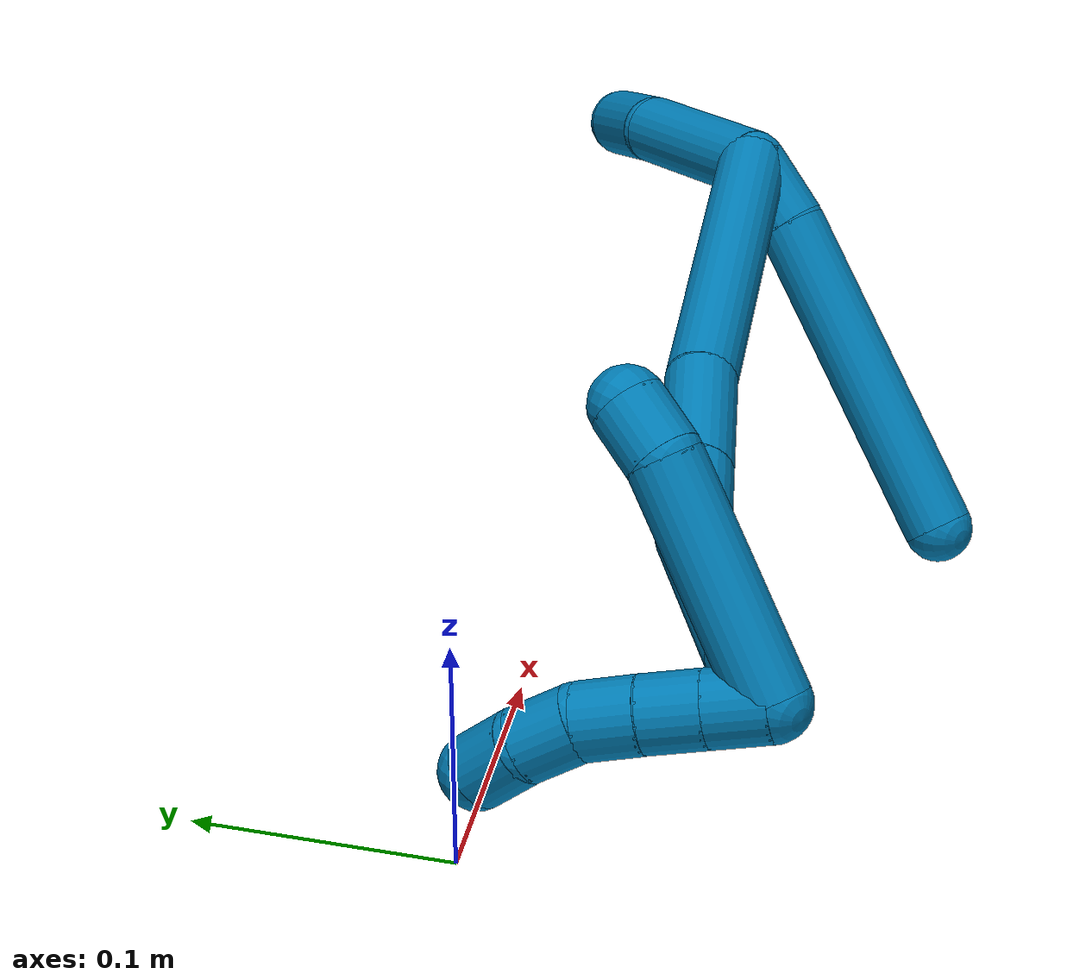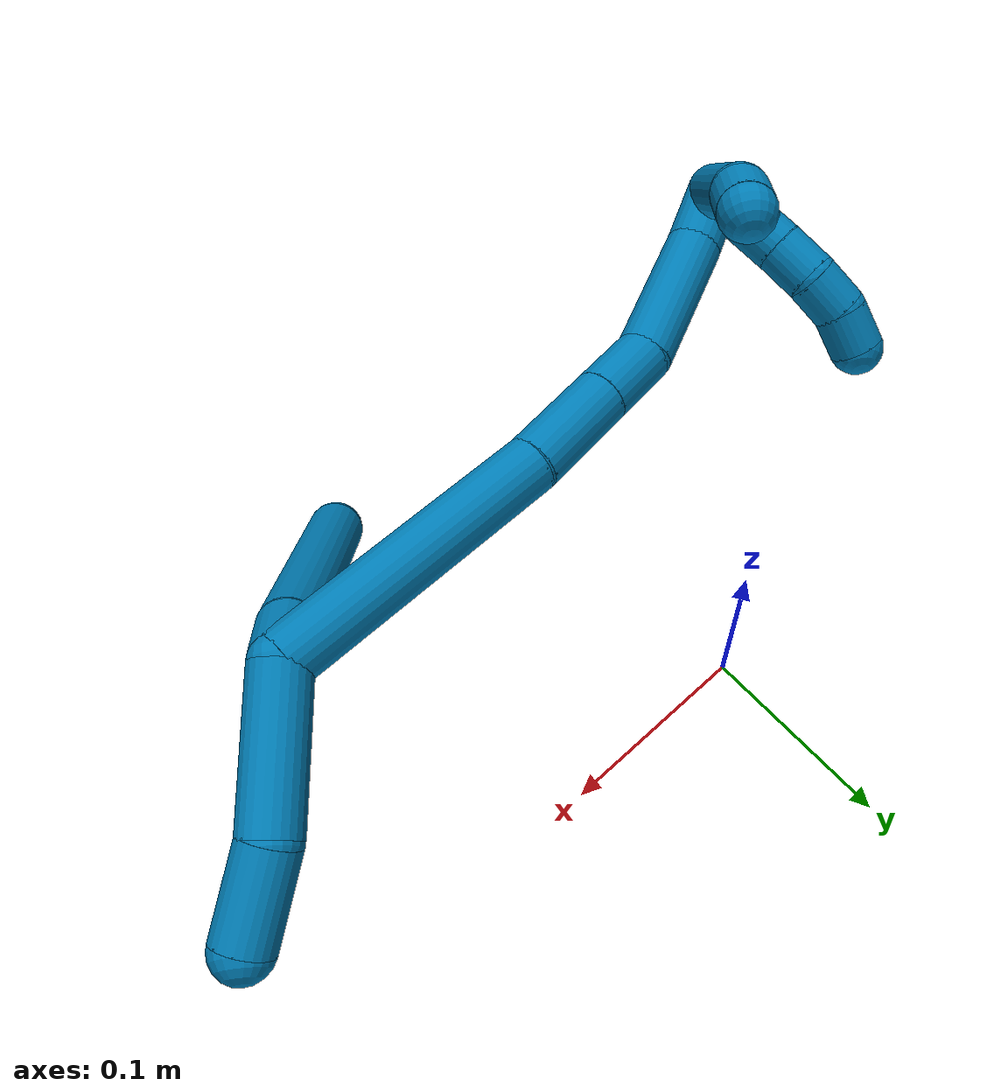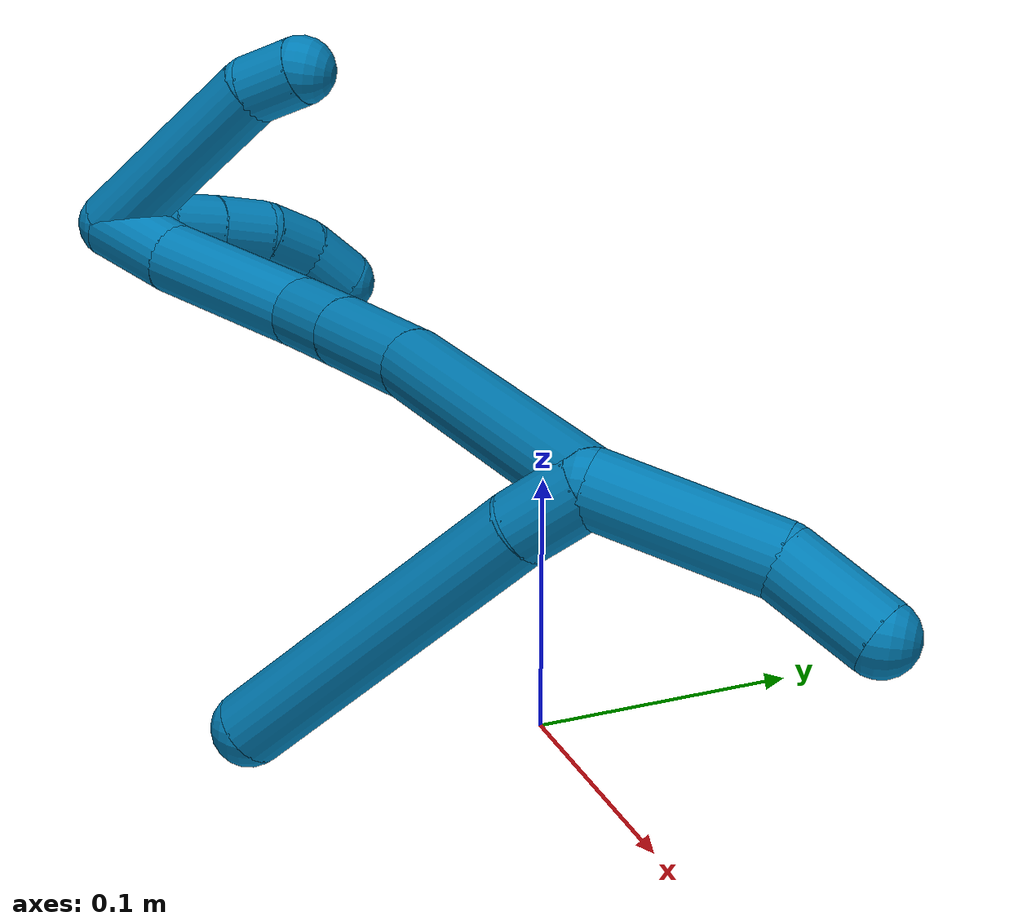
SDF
<sdf version="1.7">
 <world name="default">
  <model name="9">
   <static>0</static>
   <link name="9">
    <collision name="collision-cylinder-e_1_2_8">
     <pose>0.000622 -0.00892 0.009931 0.731799 0.046584 0.017852</pose>
     <geometry><cylinder><radius>0.0125</radius><length>0.026726</length></cylinder></geometry>
     <surface>
      <friction><ode><mu>1.16</mu><mu2>1.16</mu2><slip1>0</slip1><slip2>0</slip2></ode></friction>
      <contact><ode><kp>1e+06</kp><kd>1</kd><max_vel>0</max_vel><min_depth>0.001</min_depth></ode></contact>
     </surface>
    </collision>
    <visual name="visual-cylinder-e_1_2_8">
     <pose>0.000622 -0.00892 0.009931 0.731799 0.046584 0.017852</pose>
     <geometry><cylinder><radius>0.0125</radius><length>0.026726</length></cylinder></geometry>
     <material><ambient>0 0.490196 0.709804 1</ambient></material>
    </visual>
    <collision name="collision-cylinder-e_2_8_6">
     <pose>0.000154 -0.063647 0.061088 0.837985 -0.017692 -0.00788</pose>
     <geometry><cylinder><radius>0.0125</radius><length>0.123274</length></cylinder></geometry>
     <surface>
      <friction><ode><mu>1.16</mu><mu2>1.16</mu2><slip1>0</slip1><slip2>0</slip2></ode></friction>
      <contact><ode><kp>1e+06</kp><kd>1</kd><max_vel>0</max_vel><min_depth>0.001</min_depth></ode></contact>
     </surface>
    </collision>
    <visual name="visual-cylinder-e_2_8_6">
     <pose>0.000154 -0.063647 0.061088 0.837985 -0.017692 -0.00788</pose>
     <geometry><cylinder><radius>0.0125</radius><length>0.123274</length></cylinder></geometry>
     <material><ambient>0 0.490196 0.709804 1</ambient></material>
    </visual>
    <collision name="collision-cylinder-e_1_2_9">
     <pose>0.003701 -0.004723 -0.030735 2.98912 0.11846 1.32028</pose>
     <geometry><cylinder><radius>0.0125</radius><length>0.06263</length></cylinder></geometry>
     <surface>
      <friction><ode><mu>1.16</mu><mu2>1.16</mu2><slip1>0</slip1><slip2>0</slip2></ode></friction>
      <contact><ode><kp>1e+06</kp><kd>1</kd><max_vel>0</max_vel><min_depth>0.001</min_depth></ode></contact>
     </surface>
    </collision>
    <visual name="visual-cylinder-e_1_2_9">
     <pose>0.003701 -0.004723 -0.030735 2.98912 0.11846 1.32028</pose>
     <geometry><cylinder><radius>0.0125</radius><length>0.06263</length></cylinder></geometry>
     <material><ambient>0 0.490196 0.709804 1</ambient></material>
    </visual>
    <collision name="collision-cylinder-e_2_9_5">
     <pose>0.013966 -0.015561 -0.07786 2.78449 0.358945 1.57604</pose>
     <geometry><cylinder><radius>0.0125</radius><length>0.03737</length></cylinder></geometry>
     <surface>
      <friction><ode><mu>1.16</mu><mu2>1.16</mu2><slip1>0</slip1><slip2>0</slip2></ode></friction>
      <contact><ode><kp>1e+06</kp><kd>1</kd><max_vel>0</max_vel><min_depth>0.001</min_depth></ode></contact>
     </surface>
    </collision>
    <visual name="visual-cylinder-e_2_9_5">
     <pose>0.013966 -0.015561 -0.07786 2.78449 0.358945 1.57604</pose>
     <geometry><cylinder><radius>0.0125</radius><length>0.03737</length></cylinder></geometry>
     <material><ambient>0 0.490196 0.709804 1</ambient></material>
    </visual>
    <collision name="collision-cylinder-e_1_2_10">
     <pose>-0.049127 -0.011123 0.039168 0.276705 -0.87874 -0.130704</pose>
     <geometry><cylinder><radius>0.0125</radius><length>0.127614</length></cylinder></geometry>
     <surface>
      <friction><ode><mu>1.16</mu><mu2>1.16</mu2><slip1>0</slip1><slip2>0</slip2></ode></friction>
      <contact><ode><kp>1e+06</kp><kd>1</kd><max_vel>0</max_vel><min_depth>0.001</min_depth></ode></contact>
     </surface>
    </collision>
    <visual name="visual-cylinder-e_1_2_10">
     <pose>-0.049127 -0.011123 0.039168 0.276705 -0.87874 -0.130704</pose>
     <geometry><cylinder><radius>0.0125</radius><length>0.127614</length></cylinder></geometry>
     <material><ambient>0 0.490196 0.709804 1</ambient></material>
    </visual>
    <collision name="collision-cylinder-e_2_10_11">
     <pose>-0.114252 -0.02686 0.094402 0.279643 -0.76345 -0.11287</pose>
     <geometry><cylinder><radius>0.0125</radius><length>0.046273</length></cylinder></geometry>
     <surface>
      <friction><ode><mu>1.16</mu><mu2>1.16</mu2><slip1>0</slip1><slip2>0</slip2></ode></friction>
      <contact><ode><kp>1e+06</kp><kd>1</kd><max_vel>0</max_vel><min_depth>0.001</min_depth></ode></contact>
     </surface>
    </collision>
    <visual name="visual-cylinder-e_2_10_11">
     <pose>-0.114252 -0.02686 0.094402 0.279643 -0.76345 -0.11287</pose>
     <geometry><cylinder><radius>0.0125</radius><length>0.046273</length></cylinder></geometry>
     <material><ambient>0 0.490196 0.709804 1</ambient></material>
    </visual>
    <collision name="collision-cylinder-e_3_11_12">
     <pose>-0.140898 -0.034699 0.121221 0.291398 -0.758993 -0.116914</pose>
     <geometry><cylinder><radius>0.0125</radius><length>0.030947</length></cylinder></geometry>
     <surface>
      <friction><ode><mu>1.16</mu><mu2>1.16</mu2><slip1>0</slip1><slip2>0</slip2></ode></friction>
      <contact><ode><kp>1e+06</kp><kd>1</kd><max_vel>0</max_vel><min_depth>0.001</min_depth></ode></contact>
     </surface>
    </collision>
    <visual name="visual-cylinder-e_3_11_12">
     <pose>-0.140898 -0.034699 0.121221 0.291398 -0.758993 -0.116914</pose>
     <geometry><cylinder><radius>0.0125</radius><length>0.030947</length></cylinder></geometry>
     <material><ambient>0 0.490196 0.709804 1</ambient></material>
    </visual>
    <collision name="collision-cylinder-e_4_12_13">
     <pose>-0.167059 -0.039625 0.159917 0.06078 -0.505992 -0.015718</pose>
     <geometry><cylinder><radius>0.0125</radius><length>0.06401</length></cylinder></geometry>
     <surface>
      <friction><ode><mu>1.16</mu><mu2>1.16</mu2><slip1>0</slip1><slip2>0</slip2></ode></friction>
      <contact><ode><kp>1e+06</kp><kd>1</kd><max_vel>0</max_vel><min_depth>0.001</min_depth></ode></contact>
     </surface>
    </collision>
    <visual name="visual-cylinder-e_4_12_13">
     <pose>-0.167059 -0.039625 0.159917 0.06078 -0.505992 -0.015718</pose>
     <geometry><cylinder><radius>0.0125</radius><length>0.06401</length></cylinder></geometry>
     <material><ambient>0 0.490196 0.709804 1</ambient></material>
    </visual>
    <collision name="collision-cylinder-e_5_13_1">
     <pose>-0.189715 -0.040073 0.201646 -0.090577 -0.476476 0.022011</pose>
     <geometry><cylinder><radius>0.0125</radius><length>0.031155</length></cylinder></geometry>
     <surface>
      <friction><ode><mu>1.16</mu><mu2>1.16</mu2><slip1>0</slip1><slip2>0</slip2></ode></friction>
      <contact><ode><kp>1e+06</kp><kd>1</kd><max_vel>0</max_vel><min_depth>0.001</min_depth></ode></contact>
     </surface>
    </collision>
    <visual name="visual-cylinder-e_5_13_1">
     <pose>-0.189715 -0.040073 0.201646 -0.090577 -0.476476 0.022011</pose>
     <geometry><cylinder><radius>0.0125</radius><length>0.031155</length></cylinder></geometry>
     <material><ambient>0 0.490196 0.709804 1</ambient></material>
    </visual>
    <collision name="collision-cylinder-e_1_1_14">
     <pose>-0.196022 -0.008138 0.19015 -2.25997 0.02108 -0.044676</pose>
     <geometry><cylinder><radius>0.0125</radius><length>0.07953</length></cylinder></geometry>
     <surface>
      <friction><ode><mu>1.16</mu><mu2>1.16</mu2><slip1>0</slip1><slip2>0</slip2></ode></friction>
      <contact><ode><kp>1e+06</kp><kd>1</kd><max_vel>0</max_vel><min_depth>0.001</min_depth></ode></contact>
     </surface>
    </collision>
    <visual name="visual-cylinder-e_1_1_14">
     <pose>-0.196022 -0.008138 0.19015 -2.25997 0.02108 -0.044676</pose>
     <geometry><cylinder><radius>0.0125</radius><length>0.07953</length></cylinder></geometry>
     <material><ambient>0 0.490196 0.709804 1</ambient></material>
    </visual>
    <collision name="collision-cylinder-e_2_14_4">
     <pose>-0.194695 0.027818 0.156111 -2.59964 0.047735 -0.17144</pose>
     <geometry><cylinder><radius>0.0125</radius><length>0.02047</length></cylinder></geometry>
     <surface>
      <friction><ode><mu>1.16</mu><mu2>1.16</mu2><slip1>0</slip1><slip2>0</slip2></ode></friction>
      <contact><ode><kp>1e+06</kp><kd>1</kd><max_vel>0</max_vel><min_depth>0.001</min_depth></ode></contact>
     </surface>
    </collision>
    <visual name="visual-cylinder-e_2_14_4">
     <pose>-0.194695 0.027818 0.156111 -2.59964 0.047735 -0.17144</pose>
     <geometry><cylinder><radius>0.0125</radius><length>0.02047</length></cylinder></geometry>
     <material><ambient>0 0.490196 0.709804 1</ambient></material>
    </visual>
    <collision name="collision-cylinder-e_1_1_15">
     <pose>-0.203141 -0.040899 0.207932 2.87132 -0.679053 -2.40667</pose>
     <geometry><cylinder><radius>0.0125</radius><length>0.02</length></cylinder></geometry>
     <surface>
      <friction><ode><mu>1.16</mu><mu2>1.16</mu2><slip1>0</slip1><slip2>0</slip2></ode></friction>
      <contact><ode><kp>1e+06</kp><kd>1</kd><max_vel>0</max_vel><min_depth>0.001</min_depth></ode></contact>
     </surface>
    </collision>
    <visual name="visual-cylinder-e_1_1_15">
     <pose>-0.203141 -0.040899 0.207932 2.87132 -0.679053 -2.40667</pose>
     <geometry><cylinder><radius>0.0125</radius><length>0.02</length></cylinder></geometry>
     <material><ambient>0 0.490196 0.709804 1</ambient></material>
    </visual>
    <collision name="collision-cylinder-e_2_15_16">
     <pose>-0.215711 -0.045053 0.192942 2.87121 -0.680306 -2.40772</pose>
     <geometry><cylinder><radius>0.0125</radius><length>0.02</length></cylinder></geometry>
     <surface>
      <friction><ode><mu>1.16</mu><mu2>1.16</mu2><slip1>0</slip1><slip2>0</slip2></ode></friction>
      <contact><ode><kp>1e+06</kp><kd>1</kd><max_vel>0</max_vel><min_depth>0.001</min_depth></ode></contact>
     </surface>
    </collision>
    <visual name="visual-cylinder-e_2_15_16">
     <pose>-0.215711 -0.045053 0.192942 2.87121 -0.680306 -2.40772</pose>
     <geometry><cylinder><radius>0.0125</radius><length>0.02</length></cylinder></geometry>
     <material><ambient>0 0.490196 0.709804 1</ambient></material>
    </visual>
    <collision name="collision-cylinder-e_3_16_17">
     <pose>-0.228064 -0.049595 0.177889 2.82639 -0.651251 -2.26177</pose>
     <geometry><cylinder><radius>0.0125</radius><length>0.02</length></cylinder></geometry>
     <surface>
      <friction><ode><mu>1.16</mu><mu2>1.16</mu2><slip1>0</slip1><slip2>0</slip2></ode></friction>
      <contact><ode><kp>1e+06</kp><kd>1</kd><max_vel>0</max_vel><min_depth>0.001</min_depth></ode></contact>
     </surface>
    </collision>
    <visual name="visual-cylinder-e_3_16_17">
     <pose>-0.228064 -0.049595 0.177889 2.82639 -0.651251 -2.26177</pose>
     <geometry><cylinder><radius>0.0125</radius><length>0.02</length></cylinder></geometry>
     <material><ambient>0 0.490196 0.709804 1</ambient></material>
    </visual>
    <collision name="collision-cylinder-e_4_17_18">
     <pose>-0.23997 -0.05705 0.163929 2.47927 -0.624197 -1.50726</pose>
     <geometry><cylinder><radius>0.0125</radius><length>0.02</length></cylinder></geometry>
     <surface>
      <friction><ode><mu>1.16</mu><mu2>1.16</mu2><slip1>0</slip1><slip2>0</slip2></ode></friction>
      <contact><ode><kp>1e+06</kp><kd>1</kd><max_vel>0</max_vel><min_depth>0.001</min_depth></ode></contact>
     </surface>
    </collision>
    <visual name="visual-cylinder-e_4_17_18">
     <pose>-0.23997 -0.05705 0.163929 2.47927 -0.624197 -1.50726</pose>
     <geometry><cylinder><radius>0.0125</radius><length>0.02</length></cylinder></geometry>
     <material><ambient>0 0.490196 0.709804 1</ambient></material>
    </visual>
    <collision name="collision-cylinder-e_5_18_3">
     <pose>-0.249255 -0.068667 0.150878 2.35809 -0.351266 -0.811492</pose>
     <geometry><cylinder><radius>0.0125</radius><length>0.02</length></cylinder></geometry>
     <surface>
      <friction><ode><mu>1.16</mu><mu2>1.16</mu2><slip1>0</slip1><slip2>0</slip2></ode></friction>
      <contact><ode><kp>1e+06</kp><kd>1</kd><max_vel>0</max_vel><min_depth>0.001</min_depth></ode></contact>
     </surface>
    </collision>
    <visual name="visual-cylinder-e_5_18_3">
     <pose>-0.249255 -0.068667 0.150878 2.35809 -0.351266 -0.811492</pose>
     <geometry><cylinder><radius>0.0125</radius><length>0.02</length></cylinder></geometry>
     <material><ambient>0 0.490196 0.709804 1</ambient></material>
    </visual>
    <collision name="collision-sphere-3">
     <pose>-0.252696 -0.075294 0.144226 0 -0 0</pose>
     <geometry><sphere><radius>0.0125</radius></sphere></geometry>
     <surface>
      <friction><ode><mu>1.16</mu><mu2>1.16</mu2><slip1>0</slip1><slip2>0</slip2></ode></friction>
      <contact><ode><kp>1e+06</kp><kd>1</kd><max_vel>0</max_vel><min_depth>0.001</min_depth></ode></contact>
     </surface>
    </collision>
    <visual name="visual-sphere-3">
     <pose>-0.252696 -0.075294 0.144226 0 -0 0</pose>
     <geometry><sphere><radius>0.0125</radius></sphere></geometry>
     <material><ambient>0 0.490196 0.709804 1</ambient></material>
    </visual>
    <collision name="collision-sphere-10">
     <pose>-0.098255 -0.022247 0.078336 0 -0 0</pose>
     <geometry><sphere><radius>0.0125</radius></sphere></geometry>
     <surface>
      <friction><ode><mu>1.16</mu><mu2>1.16</mu2><slip1>0</slip1><slip2>0</slip2></ode></friction>
      <contact><ode><kp>1e+06</kp><kd>1</kd><max_vel>0</max_vel><min_depth>0.001</min_depth></ode></contact>
     </surface>
    </collision>
    <visual name="visual-sphere-10">
     <pose>-0.098255 -0.022247 0.078336 0 -0 0</pose>
     <geometry><sphere><radius>0.0125</radius></sphere></geometry>
     <material><ambient>0 0.490196 0.709804 1</ambient></material>
    </visual>
    <collision name="collision-sphere-5">
     <pose>0.020529 -0.021676 -0.094251 0 -0 0</pose>
     <geometry><sphere><radius>0.0125</radius></sphere></geometry>
     <surface>
      <friction><ode><mu>1.16</mu><mu2>1.16</mu2><slip1>0</slip1><slip2>0</slip2></ode></friction>
      <contact><ode><kp>1e+06</kp><kd>1</kd><max_vel>0</max_vel><min_depth>0.001</min_depth></ode></contact>
     </surface>
    </collision>
    <visual name="visual-sphere-5">
     <pose>0.020529 -0.021676 -0.094251 0 -0 0</pose>
     <geometry><sphere><radius>0.0125</radius></sphere></geometry>
     <material><ambient>0 0.490196 0.709804 1</ambient></material>
    </visual>
    <collision name="collision-sphere-6">
     <pose>-0.000936 -0.109454 0.102315 0 -0 0</pose>
     <geometry><sphere><radius>0.0125</radius></sphere></geometry>
     <surface>
      <friction><ode><mu>1.16</mu><mu2>1.16</mu2><slip1>0</slip1><slip2>0</slip2></ode></friction>
      <contact><ode><kp>1e+06</kp><kd>1</kd><max_vel>0</max_vel><min_depth>0.001</min_depth></ode></contact>
     </surface>
    </collision>
    <visual name="visual-sphere-6">
     <pose>-0.000936 -0.109454 0.102315 0 -0 0</pose>
     <geometry><sphere><radius>0.0125</radius></sphere></geometry>
     <material><ambient>0 0.490196 0.709804 1</ambient></material>
    </visual>
    <collision name="collision-sphere-9">
     <pose>0.007402 -0.009446 -0.06147 0 -0 0</pose>
     <geometry><sphere><radius>0.0125</radius></sphere></geometry>
     <surface>
      <friction><ode><mu>1.16</mu><mu2>1.16</mu2><slip1>0</slip1><slip2>0</slip2></ode></friction>
      <contact><ode><kp>1e+06</kp><kd>1</kd><max_vel>0</max_vel><min_depth>0.001</min_depth></ode></contact>
     </surface>
    </collision>
    <visual name="visual-sphere-9">
     <pose>0.007402 -0.009446 -0.06147 0 -0 0</pose>
     <geometry><sphere><radius>0.0125</radius></sphere></geometry>
     <material><ambient>0 0.490196 0.709804 1</ambient></material>
    </visual>
    <collision name="collision-sphere-2">
     <geometry><sphere><radius>0.0125</radius></sphere></geometry>
     <surface>
      <friction><ode><mu>1.16</mu><mu2>1.16</mu2><slip1>0</slip1><slip2>0</slip2></ode></friction>
      <contact><ode><kp>1e+06</kp><kd>1</kd><max_vel>0</max_vel><min_depth>0.001</min_depth></ode></contact>
     </surface>
    </collision>
    <visual name="visual-sphere-2">
     <geometry><sphere><radius>0.0125</radius></sphere></geometry>
     <material><ambient>0 0.490196 0.709804 1</ambient></material>
    </visual>
    <collision name="collision-sphere-8">
     <pose>0.001245 -0.017839 0.019862 0 -0 0</pose>
     <geometry><sphere><radius>0.0125</radius></sphere></geometry>
     <surface>
      <friction><ode><mu>1.16</mu><mu2>1.16</mu2><slip1>0</slip1><slip2>0</slip2></ode></friction>
      <contact><ode><kp>1e+06</kp><kd>1</kd><max_vel>0</max_vel><min_depth>0.001</min_depth></ode></contact>
     </surface>
    </collision>
    <visual name="visual-sphere-8">
     <pose>0.001245 -0.017839 0.019862 0 -0 0</pose>
     <geometry><sphere><radius>0.0125</radius></sphere></geometry>
     <material><ambient>0 0.490196 0.709804 1</ambient></material>
    </visual>
    <collision name="collision-sphere-11">
     <pose>-0.130249 -0.031474 0.110468 0 -0 0</pose>
     <geometry><sphere><radius>0.0125</radius></sphere></geometry>
     <surface>
      <friction><ode><mu>1.16</mu><mu2>1.16</mu2><slip1>0</slip1><slip2>0</slip2></ode></friction>
      <contact><ode><kp>1e+06</kp><kd>1</kd><max_vel>0</max_vel><min_depth>0.001</min_depth></ode></contact>
     </surface>
    </collision>
    <visual name="visual-sphere-11">
     <pose>-0.130249 -0.031474 0.110468 0 -0 0</pose>
     <geometry><sphere><radius>0.0125</radius></sphere></geometry>
     <material><ambient>0 0.490196 0.709804 1</ambient></material>
    </visual>
    <collision name="collision-sphere-12">
     <pose>-0.151547 -0.037924 0.131974 0 -0 0</pose>
     <geometry><sphere><radius>0.0125</radius></sphere></geometry>
     <surface>
      <friction><ode><mu>1.16</mu><mu2>1.16</mu2><slip1>0</slip1><slip2>0</slip2></ode></friction>
      <contact><ode><kp>1e+06</kp><kd>1</kd><max_vel>0</max_vel><min_depth>0.001</min_depth></ode></contact>
     </surface>
    </collision>
    <visual name="visual-sphere-12">
     <pose>-0.151547 -0.037924 0.131974 0 -0 0</pose>
     <geometry><sphere><radius>0.0125</radius></sphere></geometry>
     <material><ambient>0 0.490196 0.709804 1</ambient></material>
    </visual>
    <collision name="collision-sphere-13">
     <pose>-0.182571 -0.041325 0.18786 0 -0 0</pose>
     <geometry><sphere><radius>0.0125</radius></sphere></geometry>
     <surface>
      <friction><ode><mu>1.16</mu><mu2>1.16</mu2><slip1>0</slip1><slip2>0</slip2></ode></friction>
      <contact><ode><kp>1e+06</kp><kd>1</kd><max_vel>0</max_vel><min_depth>0.001</min_depth></ode></contact>
     </surface>
    </collision>
    <visual name="visual-sphere-13">
     <pose>-0.182571 -0.041325 0.18786 0 -0 0</pose>
     <geometry><sphere><radius>0.0125</radius></sphere></geometry>
     <material><ambient>0 0.490196 0.709804 1</ambient></material>
    </visual>
    <collision name="collision-sphere-1">
     <pose>-0.19686 -0.038821 0.215431 0 -0 0</pose>
     <geometry><sphere><radius>0.0125</radius></sphere></geometry>
     <surface>
      <friction><ode><mu>1.16</mu><mu2>1.16</mu2><slip1>0</slip1><slip2>0</slip2></ode></friction>
      <contact><ode><kp>1e+06</kp><kd>1</kd><max_vel>0</max_vel><min_depth>0.001</min_depth></ode></contact>
     </surface>
    </collision>
    <visual name="visual-sphere-1">
     <pose>-0.19686 -0.038821 0.215431 0 -0 0</pose>
     <geometry><sphere><radius>0.0125</radius></sphere></geometry>
     <material><ambient>0 0.490196 0.709804 1</ambient></material>
    </visual>
    <collision name="collision-sphere-18">
     <pose>-0.245814 -0.06204 0.15753 0 -0 0</pose>
     <geometry><sphere><radius>0.0125</radius></sphere></geometry>
     <surface>
      <friction><ode><mu>1.16</mu><mu2>1.16</mu2><slip1>0</slip1><slip2>0</slip2></ode></friction>
      <contact><ode><kp>1e+06</kp><kd>1</kd><max_vel>0</max_vel><min_depth>0.001</min_depth></ode></contact>
     </surface>
    </collision>
    <visual name="visual-sphere-18">
     <pose>-0.245814 -0.06204 0.15753 0 -0 0</pose>
     <geometry><sphere><radius>0.0125</radius></sphere></geometry>
     <material><ambient>0 0.490196 0.709804 1</ambient></material>
    </visual>
    <collision name="collision-sphere-14">
     <pose>-0.195184 0.022545 0.16487 0 -0 0</pose>
     <geometry><sphere><radius>0.0125</radius></sphere></geometry>
     <surface>
      <friction><ode><mu>1.16</mu><mu2>1.16</mu2><slip1>0</slip1><slip2>0</slip2></ode></friction>
      <contact><ode><kp>1e+06</kp><kd>1</kd><max_vel>0</max_vel><min_depth>0.001</min_depth></ode></contact>
     </surface>
    </collision>
    <visual name="visual-sphere-14">
     <pose>-0.195184 0.022545 0.16487 0 -0 0</pose>
     <geometry><sphere><radius>0.0125</radius></sphere></geometry>
     <material><ambient>0 0.490196 0.709804 1</ambient></material>
    </visual>
    <collision name="collision-sphere-4">
     <pose>-0.194207 0.033091 0.147353 0 -0 0</pose>
     <geometry><sphere><radius>0.0125</radius></sphere></geometry>
     <surface>
      <friction><ode><mu>1.16</mu><mu2>1.16</mu2><slip1>0</slip1><slip2>0</slip2></ode></friction>
      <contact><ode><kp>1e+06</kp><kd>1</kd><max_vel>0</max_vel><min_depth>0.001</min_depth></ode></contact>
     </surface>
    </collision>
    <visual name="visual-sphere-4">
     <pose>-0.194207 0.033091 0.147353 0 -0 0</pose>
     <geometry><sphere><radius>0.0125</radius></sphere></geometry>
     <material><ambient>0 0.490196 0.709804 1</ambient></material>
    </visual>
    <collision name="collision-sphere-15">
     <pose>-0.209421 -0.042976 0.200433 0 -0 0</pose>
     <geometry><sphere><radius>0.0125</radius></sphere></geometry>
     <surface>
      <friction><ode><mu>1.16</mu><mu2>1.16</mu2><slip1>0</slip1><slip2>0</slip2></ode></friction>
      <contact><ode><kp>1e+06</kp><kd>1</kd><max_vel>0</max_vel><min_depth>0.001</min_depth></ode></contact>
     </surface>
    </collision>
    <visual name="visual-sphere-15">
     <pose>-0.209421 -0.042976 0.200433 0 -0 0</pose>
     <geometry><sphere><radius>0.0125</radius></sphere></geometry>
     <material><ambient>0 0.490196 0.709804 1</ambient></material>
    </visual>
    <collision name="collision-sphere-16">
     <pose>-0.222002 -0.047129 0.18545 0 -0 0</pose>
     <geometry><sphere><radius>0.0125</radius></sphere></geometry>
     <surface>
      <friction><ode><mu>1.16</mu><mu2>1.16</mu2><slip1>0</slip1><slip2>0</slip2></ode></friction>
      <contact><ode><kp>1e+06</kp><kd>1</kd><max_vel>0</max_vel><min_depth>0.001</min_depth></ode></contact>
     </surface>
    </collision>
    <visual name="visual-sphere-16">
     <pose>-0.222002 -0.047129 0.18545 0 -0 0</pose>
     <geometry><sphere><radius>0.0125</radius></sphere></geometry>
     <material><ambient>0 0.490196 0.709804 1</ambient></material>
    </visual>
    <collision name="collision-sphere-17">
     <pose>-0.234125 -0.05206 0.170327 0 -0 0</pose>
     <geometry><sphere><radius>0.0125</radius></sphere></geometry>
     <surface>
      <friction><ode><mu>1.16</mu><mu2>1.16</mu2><slip1>0</slip1><slip2>0</slip2></ode></friction>
      <contact><ode><kp>1e+06</kp><kd>1</kd><max_vel>0</max_vel><min_depth>0.001</min_depth></ode></contact>
     </surface>
    </collision>
    <visual name="visual-sphere-17">
     <pose>-0.234125 -0.05206 0.170327 0 -0 0</pose>
     <geometry><sphere><radius>0.0125</radius></sphere></geometry>
     <material><ambient>0 0.490196 0.709804 1</ambient></material>
    </visual>
    <inertial>
     <pose>-0.098706 -0.029048 0.091717 0 -0 0</pose>
     <mass>0.75</mass>
     <inertia>
      <ixx>0.000347</ixx>
      <ixy>0</ixy>
      <ixz>0</ixz>
      <iyy>0.000288</iyy>
      <iyz>0</iyz>
      <izz>0.000296</izz>
     </inertia>
    </inertial>
   </link>
   <pose>0.189344 -0.067365 0.19089 1.49263 0.062708 -0.630659</pose>
  </model>
 </world>
</sdf>
